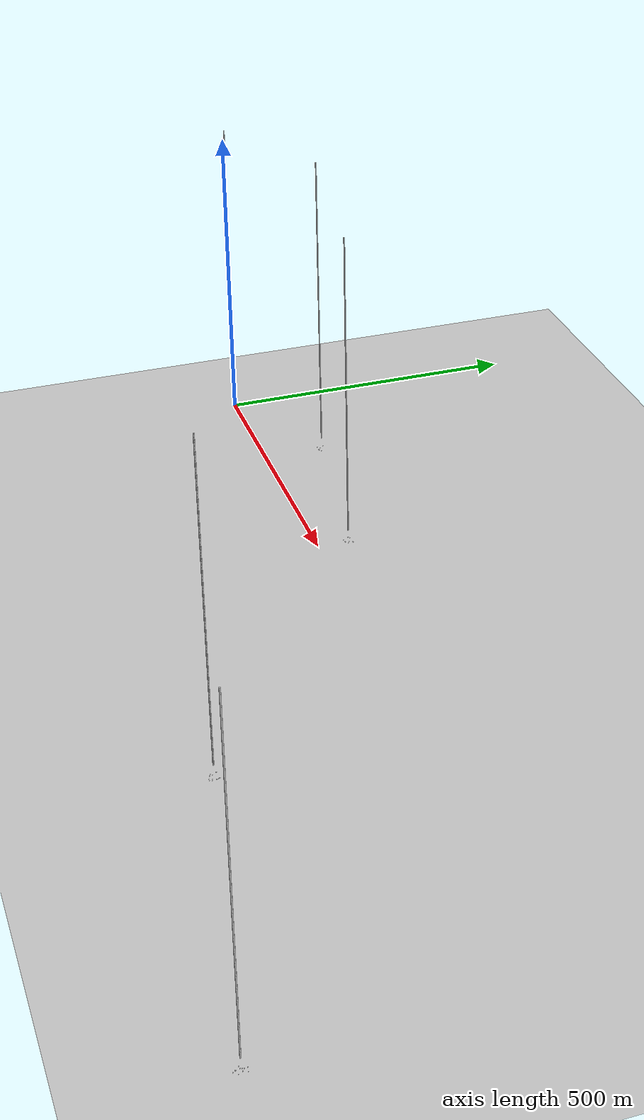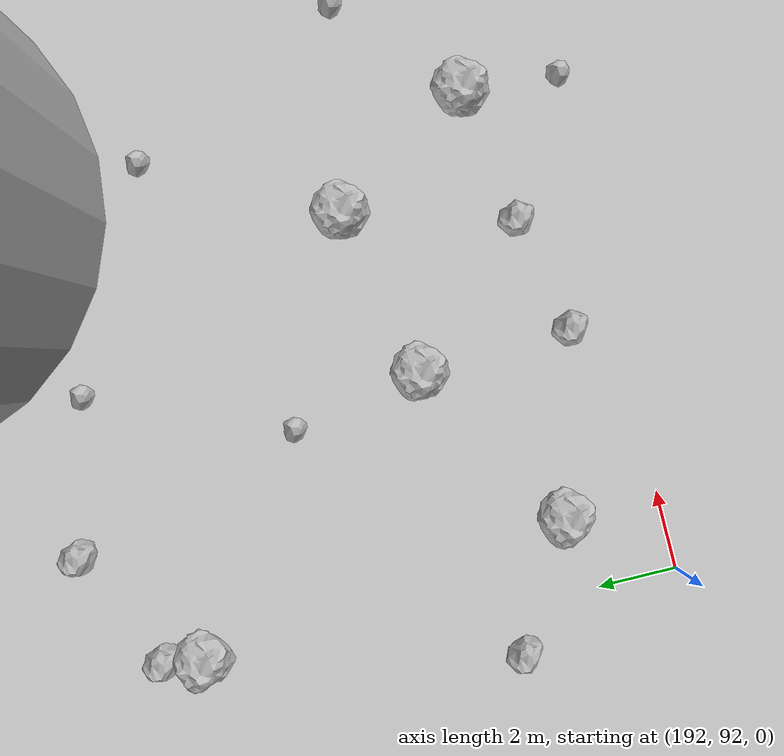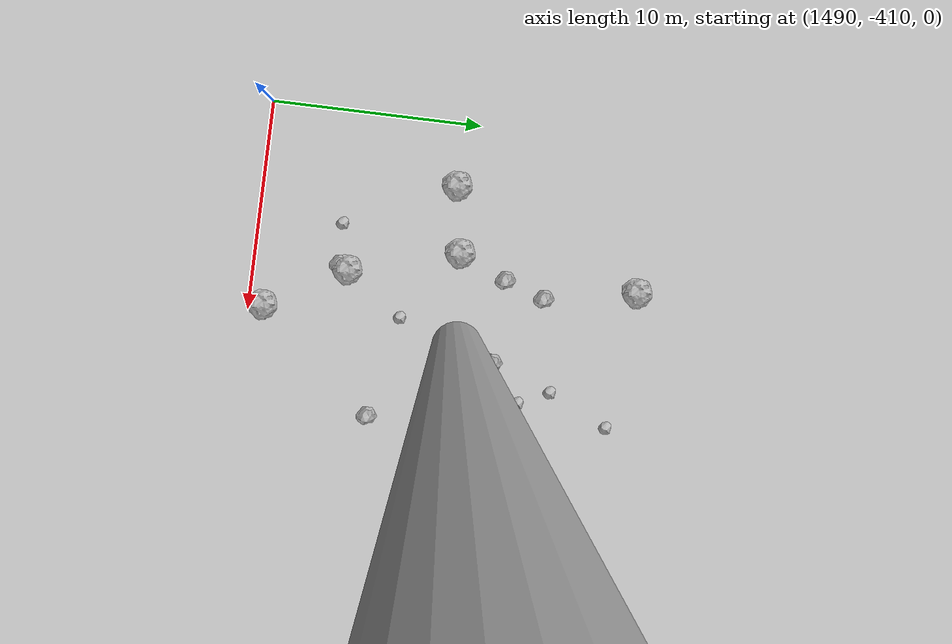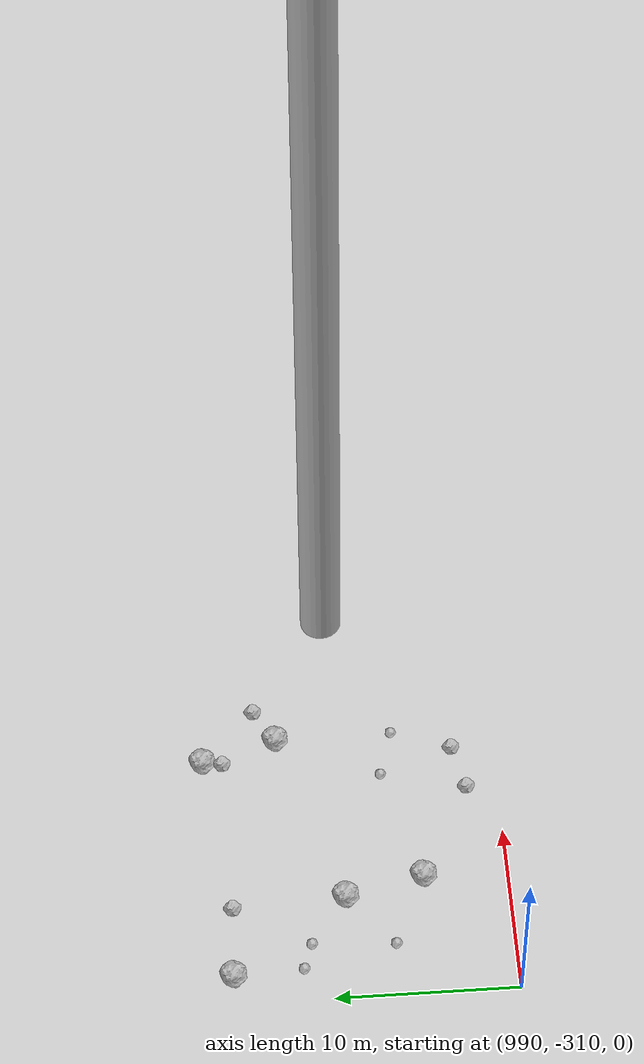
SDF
<?xml version="1.0" ?>
<sdf version="1.6">
  <world name="default">

    <include>
      <uri>model://custom_ground</uri>
    </include>

    <include>
      <uri>model://sun</uri>
    </include>

    <spherical_coordinates>
      <surface_model>EARTH_WGS84</surface_model>
      <latitude_deg>38.161479</latitude_deg>
      <longitude_deg>-122.454630</longitude_deg>
      <elevation>488.0</elevation>
      <heading_deg>90</heading_deg>
    </spherical_coordinates>

    <model name="rock1_0_0">
      <include>
        <uri>model://rock1</uri>
        <pose>7.799335348107846 -1.7234824302384428 0.5 0 0 0</pose>
      </include>
    </model>
    <model name="rock1_0_1">
      <include>
        <uri>model://rock1</uri>
        <pose>12.658343239016288 -2.102021041770838 0.5 0 0 0</pose>
      </include>
    </model>
    <model name="rock1_0_2">
      <include>
        <uri>model://rock1</uri>
        <pose>3.868280503446049 6.6143534757222255 0.5 0 0 0</pose>
      </include>
    </model>
    <model name="rock1_0_3">
      <include>
        <uri>model://rock1</uri>
        <pose>14.173518424784728 -3.3883786908397884 0.5 0 0 0</pose>
      </include>
    </model>
    <model name="rock1_0_4">
      <include>
        <uri>model://rock1</uri>
        <pose>18.597140130580996 1.0626472900900392 0.5 0 0 0</pose>
      </include>
    </model>
    <model name="rock2_0_0">
      <include>
        <uri>model://rock2</uri>
        <pose>13.770079290899345 -8.377804994349585 0.3 0 0 0</pose>
      </include>
    </model>
    <model name="rock2_0_1">
      <include>
        <uri>model://rock2</uri>
        <pose>2.2096321220417425 5.652838948356694 0.3 0 0 0</pose>
      </include>
    </model>
    <model name="rock2_0_2">
      <include>
        <uri>model://rock2</uri>
        <pose>14.39353295517498 0.7441962940191704 0.3 0 0 0</pose>
      </include>
    </model>
    <model name="rock2_0_3">
      <include>
        <uri>model://rock2</uri>
        <pose>15.428278051192235 5.076304463015525 0.3 0 0 0</pose>
      </include>
    </model>
    <model name="rock2_0_4">
      <include>
        <uri>model://rock2</uri>
        <pose>19.70597789061646 -1.8415866829411858 0.3 0 0 0</pose>
      </include>
    </model>
    <model name="rock3_0_0">
      <include>
        <uri>model://rock3</uri>
        <pose>5.514839812276648 -4.855660404825876 0.2 0 0 0</pose>
      </include>
    </model>
    <model name="rock3_0_1">
      <include>
        <uri>model://rock3</uri>
        <pose>8.905408258967666 3.4340349375639647 0.2 0 0 0</pose>
      </include>
    </model>
    <model name="rock3_0_2">
      <include>
        <uri>model://rock3</uri>
        <pose>3.644626943896594 -0.34576728589817307 0.2 0 0 0</pose>
      </include>
    </model>
    <model name="rock3_0_3">
      <include>
        <uri>model://rock3</uri>
        <pose>7.246670898039726 -4.5569892138690555 0.2 0 0 0</pose>
      </include>
    </model>
    <model name="rock3_0_4">
      <include>
        <uri>model://rock3</uri>
        <pose>11.030892058595075 -5.086947889108908 0.2 0 0 0</pose>
      </include>
    </model>
    <model name="rock1_1_0">
      <include>
        <uri>model://rock1</uri>
        <pose>198.45969491399424 97.08140204964421 0.5 0 0 0</pose>
      </include>
    </model>
    <model name="rock1_1_1">
      <include>
        <uri>model://rock1</uri>
        <pose>205.05677204998045 94.38288168063062 0.5 0 0 0</pose>
      </include>
    </model>
    <model name="rock1_1_2">
      <include>
        <uri>model://rock1</uri>
        <pose>194.0570178715664 94.435779636291 0.5 0 0 0</pose>
      </include>
    </model>
    <model name="rock1_1_3">
      <include>
        <uri>model://rock1</uri>
        <pose>192.85292601098047 104.03943090625474 0.5 0 0 0</pose>
      </include>
    </model>
    <model name="rock1_1_4">
      <include>
        <uri>model://rock1</uri>
        <pose>202.83197891962698 98.0266436409552 0.5 0 0 0</pose>
      </include>
    </model>
    <model name="rock2_1_0">
      <include>
        <uri>model://rock2</uri>
        <pose>198.5622028416616 93.15842462589173 0.3 0 0 0</pose>
      </include>
    </model>
    <model name="rock2_1_1">
      <include>
        <uri>model://rock2</uri>
        <pose>192.94517239520343 105.12580330985355 0.3 0 0 0</pose>
      </include>
    </model>
    <model name="rock2_1_2">
      <include>
        <uri>model://rock2</uri>
        <pose>190.9051015809715 96.2723542940014 0.3 0 0 0</pose>
      </include>
    </model>
    <model name="rock2_1_3">
      <include>
        <uri>model://rock2</uri>
        <pose>196.0026269370632 106.54296170645476 0.3 0 0 0</pose>
      </include>
    </model>
    <model name="rock2_1_4">
      <include>
        <uri>model://rock2</uri>
        <pose>201.5545288389679 93.79427995483876 0.3 0 0 0</pose>
      </include>
    </model>
    <model name="rock3_1_0">
      <include>
        <uri>model://rock3</uri>
        <pose>204.82467787943384 91.83318702416422 0.2 0 0 0</pose>
      </include>
    </model>
    <model name="rock3_1_1">
      <include>
        <uri>model://rock3</uri>
        <pose>199.88029865977362 105.45219918276547 0.2 0 0 0</pose>
      </include>
    </model>
    <model name="rock3_1_2">
      <include>
        <uri>model://rock3</uri>
        <pose>197.77079612414673 100.45581114665296 0.2 0 0 0</pose>
      </include>
    </model>
    <model name="rock3_1_3">
      <include>
        <uri>model://rock3</uri>
        <pose>207.90354060583917 96.99145570040712 0.2 0 0 0</pose>
      </include>
    </model>
    <model name="rock3_1_4">
      <include>
        <uri>model://rock3</uri>
        <pose>205.23439006171336 102.65702528468893 0.2 0 0 0</pose>
      </include>
    </model>
    <model name="rock1_2_0">
      <include>
        <uri>model://rock1</uri>
        <pose>490.45669953498236 52.88330573260063 0.5 0 0 0</pose>
      </include>
    </model>
    <model name="rock1_2_1">
      <include>
        <uri>model://rock1</uri>
        <pose>505.1769245938666 55.70481903574111 0.5 0 0 0</pose>
      </include>
    </model>
    <model name="rock1_2_2">
      <include>
        <uri>model://rock1</uri>
        <pose>495.1263764805784 44.302045403505815 0.5 0 0 0</pose>
      </include>
    </model>
    <model name="rock1_2_3">
      <include>
        <uri>model://rock1</uri>
        <pose>506.7716377448683 48.344663742180884 0.5 0 0 0</pose>
      </include>
    </model>
    <model name="rock1_2_4">
      <include>
        <uri>model://rock1</uri>
        <pose>501.0621592882834 43.60040869484488 0.5 0 0 0</pose>
      </include>
    </model>
    <model name="rock2_2_0">
      <include>
        <uri>model://rock2</uri>
        <pose>500.1813914891552 47.821409694641474 0.3 0 0 0</pose>
      </include>
    </model>
    <model name="rock2_2_1">
      <include>
        <uri>model://rock2</uri>
        <pose>502.06747003675423 45.17171708683943 0.3 0 0 0</pose>
      </include>
    </model>
    <model name="rock2_2_2">
      <include>
        <uri>model://rock2</uri>
        <pose>502.4064410779698 50.393078263903746 0.3 0 0 0</pose>
      </include>
    </model>
    <model name="rock2_2_3">
      <include>
        <uri>model://rock2</uri>
        <pose>496.00087849888394 43.260256434572646 0.3 0 0 0</pose>
      </include>
    </model>
    <model name="rock2_2_4">
      <include>
        <uri>model://rock2</uri>
        <pose>506.91785735142645 56.51279136944534 0.3 0 0 0</pose>
      </include>
    </model>
    <model name="rock3_2_0">
      <include>
        <uri>model://rock3</uri>
        <pose>506.1402079806884 46.21193141993693 0.2 0 0 0</pose>
      </include>
    </model>
    <model name="rock3_2_1">
      <include>
        <uri>model://rock3</uri>
        <pose>506.0712580219622 48.25451741934434 0.2 0 0 0</pose>
      </include>
    </model>
    <model name="rock3_2_2">
      <include>
        <uri>model://rock3</uri>
        <pose>506.9470676499592 47.806030896476315 0.2 0 0 0</pose>
      </include>
    </model>
    <model name="rock3_2_3">
      <include>
        <uri>model://rock3</uri>
        <pose>499.8975249098758 56.61429519345403 0.2 0 0 0</pose>
      </include>
    </model>
    <model name="rock3_2_4">
      <include>
        <uri>model://rock3</uri>
        <pose>492.4004722090858 55.113560824663956 0.2 0 0 0</pose>
      </include>
    </model>
    <model name="rock1_3_0">
      <include>
        <uri>model://rock1</uri>
        <pose>1005.5077491721019 -293.49042668310585 0.5 0 0 0</pose>
      </include>
    </model>
    <model name="rock1_3_1">
      <include>
        <uri>model://rock1</uri>
        <pose>997.2721081293704 -305.3344131171546 0.5 0 0 0</pose>
      </include>
    </model>
    <model name="rock1_3_2">
      <include>
        <uri>model://rock1</uri>
        <pose>996.2157565387525 -300.9869864146915 0.5 0 0 0</pose>
      </include>
    </model>
    <model name="rock1_3_3">
      <include>
        <uri>model://rock1</uri>
        <pose>991.6473423161746 -294.6696552007048 0.5 0 0 0</pose>
      </include>
    </model>
    <model name="rock1_3_4">
      <include>
        <uri>model://rock1</uri>
        <pose>1006.7924071737478 -297.6616979951248 0.5 0 0 0</pose>
      </include>
    </model>
    <model name="rock2_3_0">
      <include>
        <uri>model://rock2</uri>
        <pose>1008.7761709989659 -296.4866462885351 0.3 0 0 0</pose>
      </include>
    </model>
    <model name="rock2_3_1">
      <include>
        <uri>model://rock2</uri>
        <pose>1005.6244959841765 -307.5880753321134 0.3 0 0 0</pose>
      </include>
    </model>
    <model name="rock2_3_2">
      <include>
        <uri>model://rock2</uri>
        <pose>995.8013150877816 -294.7876070508771 0.3 0 0 0</pose>
      </include>
    </model>
    <model name="rock2_3_3">
      <include>
        <uri>model://rock2</uri>
        <pose>1005.3192930593963 -294.5932584168344 0.3 0 0 0</pose>
      </include>
    </model>
    <model name="rock2_3_4">
      <include>
        <uri>model://rock2</uri>
        <pose>1002.9337878670576 -308.21104566961577 0.3 0 0 0</pose>
      </include>
    </model>
    <model name="rock3_3_0">
      <include>
        <uri>model://rock3</uri>
        <pose>993.071890811204 -303.56300141225756 0.2 0 0 0</pose>
      </include>
    </model>
    <model name="rock3_3_1">
      <include>
        <uri>model://rock3</uri>
        <pose>1004.0923593373451 -303.49801788081385 0.2 0 0 0</pose>
      </include>
    </model>
    <model name="rock3_3_2">
      <include>
        <uri>model://rock3</uri>
        <pose>1006.8901388630875 -304.27666077667243 0.2 0 0 0</pose>
      </include>
    </model>
    <model name="rock3_3_3">
      <include>
        <uri>model://rock3</uri>
        <pose>991.8312757395502 -298.5061616796487 0.2 0 0 0</pose>
      </include>
    </model>
    <model name="rock3_3_4">
      <include>
        <uri>model://rock3</uri>
        <pose>993.3295152853639 -299.00353537345654 0.2 0 0 0</pose>
      </include>
    </model>
    <model name="rock1_4_0">
      <include>
        <uri>model://rock1</uri>
        <pose>1496.169329338846 -400.25559602773245 0.5 0 0 0</pose>
      </include>
    </model>
    <model name="rock1_4_1">
      <include>
        <uri>model://rock1</uri>
        <pose>1499.727213655457 -409.303010896499 0.5 0 0 0</pose>
      </include>
    </model>
    <model name="rock1_4_2">
      <include>
        <uri>model://rock1</uri>
        <pose>1497.5934002916877 -405.49620346854056 0.5 0 0 0</pose>
      </include>
    </model>
    <model name="rock1_4_3">
      <include>
        <uri>model://rock1</uri>
        <pose>1497.0161466348563 -391.6693280963091 0.5 0 0 0</pose>
      </include>
    </model>
    <model name="rock1_4_4">
      <include>
        <uri>model://rock1</uri>
        <pose>1492.9983844801072 -400.790252187876 0.5 0 0 0</pose>
      </include>
    </model>
    <model name="rock2_4_0">
      <include>
        <uri>model://rock2</uri>
        <pose>1504.3669031896168 -403.73770353148495 0.3 0 0 0</pose>
      </include>
    </model>
    <model name="rock2_4_1">
      <include>
        <uri>model://rock2</uri>
        <pose>1497.8123061005945 -396.01902239928154 0.3 0 0 0</pose>
      </include>
    </model>
    <model name="rock2_4_2">
      <include>
        <uri>model://rock2</uri>
        <pose>1497.3554653770364 -405.90553819895825 0.3 0 0 0</pose>
      </include>
    </model>
    <model name="rock2_4_3">
      <include>
        <uri>model://rock2</uri>
        <pose>1501.1394721477106 -398.0974959326537 0.3 0 0 0</pose>
      </include>
    </model>
    <model name="rock2_4_4">
      <include>
        <uri>model://rock2</uri>
        <pose>1497.1569680140476 -397.9466154897842 0.3 0 0 0</pose>
      </include>
    </model>
    <model name="rock3_4_0">
      <include>
        <uri>model://rock3</uri>
        <pose>1503.545985654683 -392.3788706584402 0.2 0 0 0</pose>
      </include>
    </model>
    <model name="rock3_4_1">
      <include>
        <uri>model://rock3</uri>
        <pose>1495.3820643760675 -406.01103878957196 0.2 0 0 0</pose>
      </include>
    </model>
    <model name="rock3_4_2">
      <include>
        <uri>model://rock3</uri>
        <pose>1499.5206456235205 -402.75845581639095 0.2 0 0 0</pose>
      </include>
    </model>
    <model name="rock3_4_3">
      <include>
        <uri>model://rock3</uri>
        <pose>1502.1994150350054 -395.2207256158498 0.2 0 0 0</pose>
      </include>
    </model>
    <model name="rock3_4_4">
      <include>
        <uri>model://rock3</uri>
        <pose>1502.887422347314 -396.6869367203663 0.2 0 0 0</pose>
      </include>
    </model>

    <model name="cylinder_1">
      <static>true</static>
      <link name="link">
        <visual name="visual">
          <geometry>
            <cylinder>
              <radius>1</radius>
              <length>500</length>
            </cylinder>
          </geometry>
        </visual>
      </link>
      <pose>10 0 270 0 0 0</pose>
    </model>

    <model name="cylinder_2">
      <static>true</static>
      <link name="link">
        <visual name="visual">
          <geometry>
            <cylinder>
              <radius>1</radius>
              <length>500</length>
            </cylinder>
          </geometry>
        </visual>
      </link>
      <pose>200 100 270 0 0 0</pose>
    </model>

    <model name="cylinder_3">
      <static>true</static>
      <link name="link">
        <visual name="visual">
          <geometry>
            <cylinder>
              <radius>1</radius>
              <length>500</length>
            </cylinder>
          </geometry>
        </visual>
      </link>
      <pose>500 50 270 0 0 0</pose>
    </model>

    <model name="cylinder_4">
      <static>true</static>
      <link name="link">
        <visual name="visual">
          <geometry>
            <cylinder>
              <radius>1</radius>
              <length>500</length>
            </cylinder>
          </geometry>
        </visual>
      </link>
      <pose>1000 -300 270 0 0 0</pose>
    </model>

    <model name="cylinder_5">
      <static>true</static>
      <link name="link">
        <visual name="visual">
          <geometry>
            <cylinder>
              <radius>1</radius>
              <length>500</length>
            </cylinder>
          </geometry>
        </visual>
      </link>
      <pose>1500 -400 270 0 0 0</pose>
    </model>

  </world>
</sdf>

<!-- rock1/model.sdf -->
<sdf version="1.6">
  <model name="rock1">
    <static>true</static> <!-- Set to true if the model should not move -->
    <pose>0 0 0 0 0 0</pose>

    <!--z offset is 0.5 for full scale-->

    <link name="link">
      <collision name="rock1_collision">
        <geometry>
          <mesh>
            <uri>model://meshes/rock1.dae</uri>
          </mesh>
        </geometry>
      </collision>
      <visual name="rock1_visual">
        <geometry>
          <mesh>
            <uri>model://meshes/rock1.dae</uri>
          </mesh>
        </geometry>
        <material>
          <script>
            <uri>model://materials/scripts/sand_pebbles.material</uri>
            <name>custom_ground/Image</name>
          </script>
        </material>
      </visual>
    </link>
  </model>
</sdf>

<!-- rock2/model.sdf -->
<sdf version="1.6">
  <model name="rock2">
    <static>true</static> <!-- Set to true if the model should not move -->
    <pose>0 0 0 0 0 0</pose>

    <!--z offset is 0.3 for full scale-->

    <link name="link">
      <collision name="rock2_collision">
        <geometry>
          <mesh>
            <uri>model://meshes/rock2.dae</uri>
          </mesh>
        </geometry>
      </collision>
      <visual name="rock2_visual">
        <geometry>
          <mesh>
            <uri>model://meshes/rock2.dae</uri>
          </mesh>
        </geometry>
        <material>
          <script>
            <uri>model://materials/scripts/sand_pebbles.material</uri>
            <name>custom_ground/Image</name>
          </script>
        </material>
      </visual>
    </link>
  </model>
</sdf>

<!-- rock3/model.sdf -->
<sdf version="1.6">
  <model name="rock3">
    <static>true</static> <!-- Set to true if the model should not move -->
    <pose>0 0 0 0 0 0</pose>

    <!--z offset is 0.2 for full scale-->

    <link name="link">
      <collision name="rock3_collision">
        <geometry>
          <mesh>
            <uri>model://meshes/rock3.dae</uri>
          </mesh>
        </geometry>
      </collision>
      <visual name="rock3_visual">
        <geometry>
          <mesh>
            <uri>model://meshes/rock3.dae</uri>
          </mesh>
        </geometry>
        <material>
          <script>
            <uri>model://materials/scripts/sand_pebbles.material</uri>
            <name>custom_ground/Image</name>
          </script>
        </material>
      </visual>
    </link>
  </model>
</sdf>

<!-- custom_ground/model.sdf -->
<sdf version="1.6">
  <model name="custom_ground">
    <static>true</static> <!-- Ground is static and immovable -->
    <link name="ground_link">
      <pose>240 0 0 0 0 0</pose> <!-- Position and orientation relative to the world -->
      <!-- Visual Representation -->
      <visual name="ground_visual">
        <geometry>
          <plane>
            <normal>0 0 1</normal> <!-- Upward facing plane -->
            <size>500 500</size> <!-- Size of the plane -->
          </plane>
        </geometry>
        <material>
          <script>
            <uri>model://materials/scripts/sand_pebbles.material</uri>
            <name>custom_ground/Image</name>
          </script>
        </material>
      </visual>

      <!-- Collision Representation -->
      <collision name="ground_collision">
        <geometry>
          <plane>
            <normal>0 0 1</normal>
            <size>100 100</size>
          </plane>
        </geometry>
      </collision>

    </link>
  </model>
</sdf>
